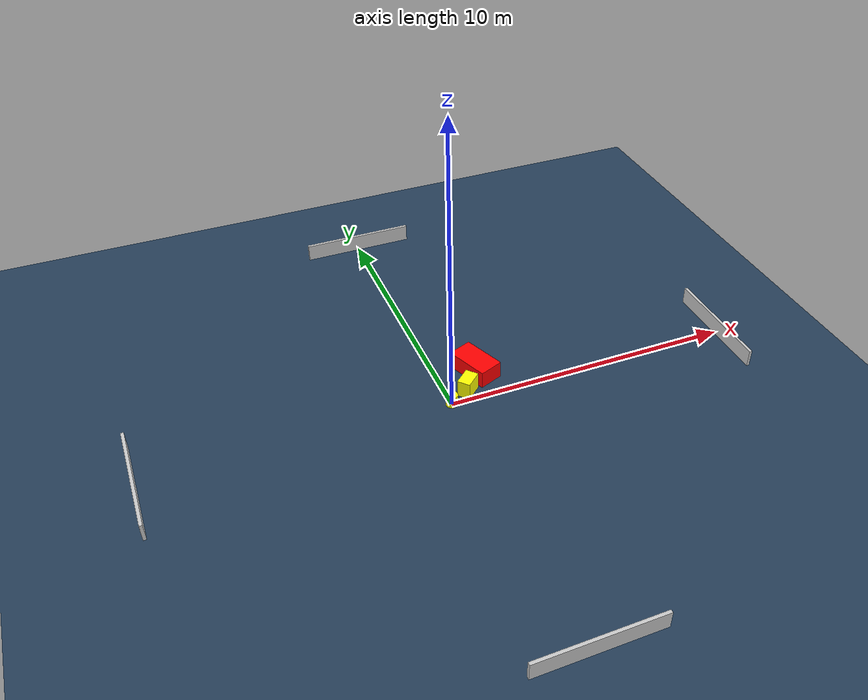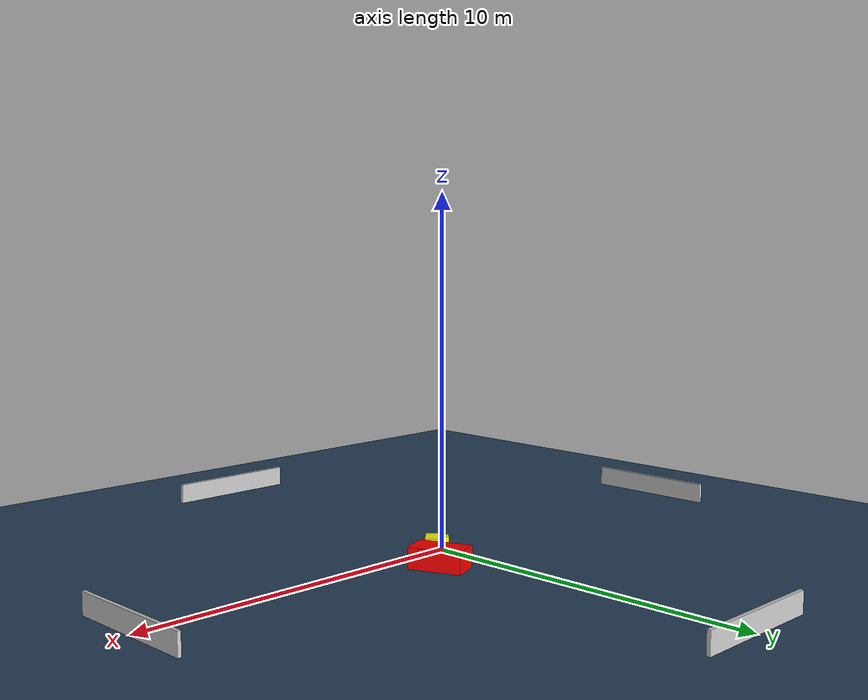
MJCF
<?xml version="1.0" ?>
<mujoco model="generated_environment">
  <option timestep="0.01" integrator="RK4" cone="elliptic"/>
  <default>
    <geom density="1"/>
  </default>
  <asset>
    <texture builtin="gradient" height="3072" name="skybox" rgb1="0.3 0.5 0.7" rgb2="0 0 0" type="skybox" width="512"/>
    <texture builtin="checker" height="300" name="groundplane" rgb1="0.2 0.3 0.4" rgb2="0.1 0.2 0.3" type="2d" width="300"/>
    <material name="groundplane" reflectance="0.2" texrepeat="5 5" texture="groundplane"/>
  </asset>
  <worldbody>
    <light dir="0 0 -1" directional="true" pos="0 0 1.5"/>
    <geom condim="3" friction="0.5 0.005 0.001" material="groundplane" name="floor" pos="0 0 0" size="0 0 0.05" type="plane"/>
    <body name="walls">
      <geom name="wall_1" condim="4" pos="-10.0 0.0 0.3" rgba="0.800000011920929 0.800000011920929 0.800000011920929 1.0" size="0.05 2.0 0.3" type="box"/>
      <geom name="wall_2" condim="4" pos="10.0 0.0 0.3" rgba="0.800000011920929 0.800000011920929 0.800000011920929 1.0" size="0.05 2.0 0.3" type="box"/>
      <geom name="wall_3" condim="4" pos="0.0 -10.0 0.3" rgba="0.800000011920929 0.800000011920929 0.800000011920929 1.0" size="2.0 0.05 0.3" type="box"/>
      <geom name="wall_4" condim="4" pos="0.0 10.0 0.3" rgba="0.800000011920929 0.800000011920929 0.800000011920929 1.0" size="2.0 0.05 0.3" type="box"/>
    </body>
    <body name="robot">
      <joint name="joint_x" type="slide" pos="0 0 0" axis="1 0 0"/>
      <joint name="joint_y" type="slide" pos="0 0 0" axis="0 1 0"/>
      <geom name="robot" type="cylinder" pos="0.0 0.0 0.2" size="0.2 0.2 0.0" mass="5.0" friction="1.0 0.005 0.0001" condim="4" rgba="1.0 1.0 0.0 1.0"/>
    </body>
    <body name="obstacle_1_movable">
      <geom name="obstacle_1_movable" condim="4" pos="0.7153465773917017 0.3818365256222915 0.3" euler="0 0 42.527875018684014" friction="0.0 0.005 0.001" rgba="1.0 1.0 0.0 1.0" size="0.32705278760186396 0.22194362900604592 0.3" type="box" mass="0.1"/>
      <joint type="free"/>
    </body>
    <body name="obstacle_2_static">
      <geom name="obstacle_2_static" condim="4" pos="1.3368269120686105 1.2375138840201927 0.3" euler="0 0 291.72847849965973" friction="0.0 0.005 0.001" rgba="1.0 0.0 0.0 1.0" size="0.761275885738329 0.42679641085979425 0.3" type="box"/>
    </body>
  </worldbody>
  <actuator>
    <motor name="actuator_x" joint="joint_x" gear="1" ctrlrange="-1 1"/>
    <motor name="actuator_y" joint="joint_y" gear="1" ctrlrange="-1 1"/>
  </actuator>
</mujoco>
